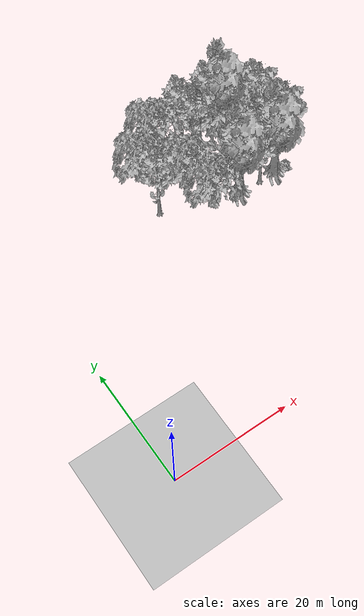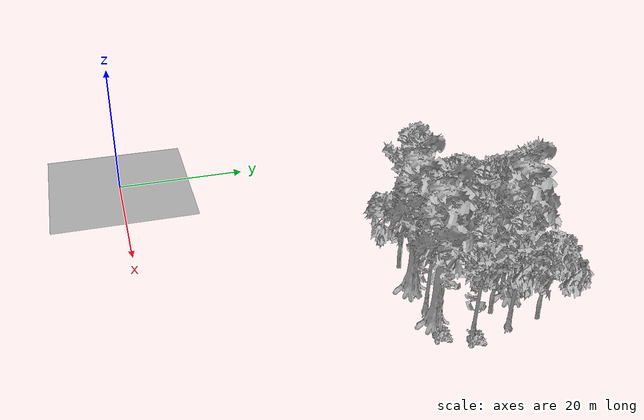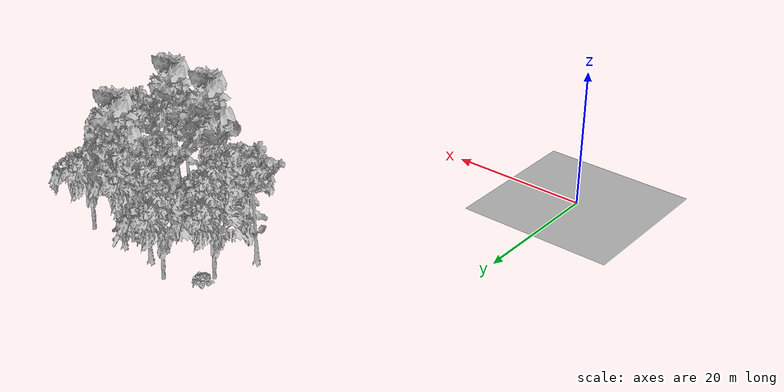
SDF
<sdf version="1.7">
 <world name="default">
  <model name="ground_plane">
   <static>1</static>
   <link name="link">
    <collision name="collision">
     <geometry><plane><normal>0 0 1</normal><size>100 100</size></plane></geometry>
     <surface><contact><ode><min_depth>0.01</min_depth><max_vel>0</max_vel></ode></contact></surface>
    </collision>
    <visual name="grass">
     <cast_shadows>0</cast_shadows>
     <geometry>
      <mesh>
       <scale>0.41000000000000003 0.41000000000000003 0.1</scale>
       <uri>file://grass_plane/meshes/grass_plane.dae</uri>
      </mesh>
     </geometry>
    </visual>
   </link>
  </model>
  <model name="Tree 33">
   <static>1</static>
   <pose>39.67086391093697 47.693228647121785 0 1.57079 -0 0</pose>
   <link name="link">
    <collision name="collision">
     <geometry><mesh><scale>5 5 5</scale><uri>model://tree_9/meshes/tree_9.obj</uri></mesh></geometry>
    </collision>
    <visual name="visual">
     <geometry><mesh><scale>5 5 5</scale><uri>model://tree_9/meshes/tree_9.obj</uri></mesh></geometry>
    </visual>
   </link>
  </model>
  <model name="Tree 50">
   <static>1</static>
   <pose>23.784958615671158 39.071334697973896 0 1.57079 -0 0</pose>
   <link name="link">
    <collision name="collision">
     <geometry><mesh><scale>5 5 5</scale><uri>model://tree_9/meshes/tree_9.obj</uri></mesh></geometry>
    </collision>
    <visual name="visual">
     <geometry><mesh><scale>5 5 5</scale><uri>model://tree_9/meshes/tree_9.obj</uri></mesh></geometry>
    </visual>
   </link>
  </model>
  <model name="Tree 56">
   <static>1</static>
   <pose>24.795117540372743 45.456987772595454 0 1.57079 -0 0</pose>
   <link name="link">
    <collision name="collision">
     <geometry><mesh><scale>5 5 5</scale><uri>model://tree_2/meshes/tree_2.obj</uri></mesh></geometry>
    </collision>
    <visual name="visual">
     <geometry><mesh><scale>5 5 5</scale><uri>model://tree_2/meshes/tree_2.obj</uri></mesh></geometry>
    </visual>
   </link>
  </model>
  <model name="Tree 89">
   <static>1</static>
   <pose>35.30041234183608 45.22693519672306 0 1.57079 -0 0</pose>
   <link name="link">
    <collision name="collision">
     <geometry><mesh><scale>5 5 5</scale><uri>model://tree_9/meshes/tree_9.obj</uri></mesh></geometry>
    </collision>
    <visual name="visual">
     <geometry><mesh><scale>5 5 5</scale><uri>model://tree_9/meshes/tree_9.obj</uri></mesh></geometry>
    </visual>
   </link>
  </model>
  <model name="Tree 98">
   <static>1</static>
   <pose>39.37759468433839 46.303701114589714 0 1.57079 -0 0</pose>
   <link name="link">
    <collision name="collision">
     <geometry><mesh><scale>5 5 5</scale><uri>model://tree_2/meshes/tree_2.obj</uri></mesh></geometry>
    </collision>
    <visual name="visual">
     <geometry><mesh><scale>5 5 5</scale><uri>model://tree_2/meshes/tree_2.obj</uri></mesh></geometry>
    </visual>
   </link>
  </model>
  <model name="Tree 149">
   <static>1</static>
   <pose>34.92805971777392 44.63427372227741 0 1.57079 -0 0</pose>
   <link name="link">
    <collision name="collision">
     <geometry><mesh><scale>5 5 5</scale><uri>model://tree_9/meshes/tree_9.obj</uri></mesh></geometry>
    </collision>
    <visual name="visual">
     <geometry><mesh><scale>5 5 5</scale><uri>model://tree_9/meshes/tree_9.obj</uri></mesh></geometry>
    </visual>
   </link>
  </model>
  <model name="Tree 156">
   <static>1</static>
   <pose>37.145250818423165 35.27654310468033 0 1.57079 -0 0</pose>
   <link name="link">
    <collision name="collision">
     <geometry><mesh><scale>5 5 5</scale><uri>model://tree_9/meshes/tree_9.obj</uri></mesh></geometry>
    </collision>
    <visual name="visual">
     <geometry><mesh><scale>5 5 5</scale><uri>model://tree_9/meshes/tree_9.obj</uri></mesh></geometry>
    </visual>
   </link>
  </model>
  <model name="Tree 160">
   <static>1</static>
   <pose>43.79051882658062 34.58082346817598 0 1.57079 -0 0</pose>
   <link name="link">
    <collision name="collision">
     <geometry><mesh><scale>5 5 5</scale><uri>model://tree_4/meshes/tree_4.obj</uri></mesh></geometry>
    </collision>
    <visual name="visual">
     <geometry><mesh><scale>5 5 5</scale><uri>model://tree_4/meshes/tree_4.obj</uri></mesh></geometry>
    </visual>
   </link>
  </model>
  <model name="Tree 166">
   <static>1</static>
   <pose>45.80068980575068 47.62167638669008 0 1.57079 -0 0</pose>
   <link name="link">
    <collision name="collision">
     <geometry><mesh><scale>5 5 5</scale><uri>model://tree_2/meshes/tree_2.obj</uri></mesh></geometry>
    </collision>
    <visual name="visual">
     <geometry><mesh><scale>5 5 5</scale><uri>model://tree_2/meshes/tree_2.obj</uri></mesh></geometry>
    </visual>
   </link>
  </model>
  <model name="Tree 193">
   <static>1</static>
   <pose>31.4406955588246 35.02788881723883 0 1.57079 -0 0</pose>
   <link name="link">
    <collision name="collision">
     <geometry><mesh><scale>5 5 5</scale><uri>model://tree_2/meshes/tree_2.obj</uri></mesh></geometry>
    </collision>
    <visual name="visual">
     <geometry><mesh><scale>5 5 5</scale><uri>model://tree_2/meshes/tree_2.obj</uri></mesh></geometry>
    </visual>
   </link>
  </model>
  <model name="Tree 246">
   <static>1</static>
   <pose>46.363726576839994 43.3824258515282 0 1.57079 -0 0</pose>
   <link name="link">
    <collision name="collision">
     <geometry><mesh><scale>5 5 5</scale><uri>model://tree_9/meshes/tree_9.obj</uri></mesh></geometry>
    </collision>
    <visual name="visual">
     <geometry><mesh><scale>5 5 5</scale><uri>model://tree_9/meshes/tree_9.obj</uri></mesh></geometry>
    </visual>
   </link>
  </model>
  <model name="Tree 251">
   <static>1</static>
   <pose>41.4586439803152 46.248667576131524 0 1.57079 -0 0</pose>
   <link name="link">
    <collision name="collision">
     <geometry><mesh><scale>5 5 5</scale><uri>model://tree_4/meshes/tree_4.obj</uri></mesh></geometry>
    </collision>
    <visual name="visual">
     <geometry><mesh><scale>5 5 5</scale><uri>model://tree_4/meshes/tree_4.obj</uri></mesh></geometry>
    </visual>
   </link>
  </model>
  <model name="Tree 281">
   <static>1</static>
   <pose>36.60943720805692 34.59463839181744 0 1.57079 -0 0</pose>
   <link name="link">
    <collision name="collision">
     <geometry><mesh><scale>5 5 5</scale><uri>model://tree_4/meshes/tree_4.obj</uri></mesh></geometry>
    </collision>
    <visual name="visual">
     <geometry><mesh><scale>5 5 5</scale><uri>model://tree_4/meshes/tree_4.obj</uri></mesh></geometry>
    </visual>
   </link>
  </model>
  <model name="Tree 287">
   <static>1</static>
   <pose>34.36551153234784 47.771866823140755 0 1.57079 -0 0</pose>
   <link name="link">
    <collision name="collision">
     <geometry><mesh><scale>5 5 5</scale><uri>model://tree_9/meshes/tree_9.obj</uri></mesh></geometry>
    </collision>
    <visual name="visual">
     <geometry><mesh><scale>5 5 5</scale><uri>model://tree_9/meshes/tree_9.obj</uri></mesh></geometry>
    </visual>
   </link>
  </model>
  <model name="Tree 306">
   <static>1</static>
   <pose>29.725671890383992 40.537798345735894 0 1.57079 -0 0</pose>
   <link name="link">
    <collision name="collision">
     <geometry><mesh><scale>5 5 5</scale><uri>model://tree_2/meshes/tree_2.obj</uri></mesh></geometry>
    </collision>
    <visual name="visual">
     <geometry><mesh><scale>5 5 5</scale><uri>model://tree_2/meshes/tree_2.obj</uri></mesh></geometry>
    </visual>
   </link>
  </model>
  <model name="Tree 376">
   <static>1</static>
   <pose>29.66214670094044 49.65046742588045 0 1.57079 -0 0</pose>
   <link name="link">
    <collision name="collision">
     <geometry><mesh><scale>5 5 5</scale><uri>model://tree_2/meshes/tree_2.obj</uri></mesh></geometry>
    </collision>
    <visual name="visual">
     <geometry><mesh><scale>5 5 5</scale><uri>model://tree_2/meshes/tree_2.obj</uri></mesh></geometry>
    </visual>
   </link>
  </model>
  <model name="Tree 387">
   <static>1</static>
   <pose>41.03221677490875 34.704959237562605 0 1.57079 -0 0</pose>
   <link name="link">
    <collision name="collision">
     <geometry><mesh><scale>5 5 5</scale><uri>model://tree_9/meshes/tree_9.obj</uri></mesh></geometry>
    </collision>
    <visual name="visual">
     <geometry><mesh><scale>5 5 5</scale><uri>model://tree_9/meshes/tree_9.obj</uri></mesh></geometry>
    </visual>
   </link>
  </model>
  <model name="Tree 406">
   <static>1</static>
   <pose>43.341286187382494 42.47876591322391 0 1.57079 -0 0</pose>
   <link name="link">
    <collision name="collision">
     <geometry><mesh><scale>5 5 5</scale><uri>model://tree_2/meshes/tree_2.obj</uri></mesh></geometry>
    </collision>
    <visual name="visual">
     <geometry><mesh><scale>5 5 5</scale><uri>model://tree_2/meshes/tree_2.obj</uri></mesh></geometry>
    </visual>
   </link>
  </model>
  <model name="Tree 492">
   <static>1</static>
   <pose>47.427719201250056 37.905993655684384 0 1.57079 -0 0</pose>
   <link name="link">
    <collision name="collision">
     <geometry><mesh><scale>5 5 5</scale><uri>model://tree_9/meshes/tree_9.obj</uri></mesh></geometry>
    </collision>
    <visual name="visual">
     <geometry><mesh><scale>5 5 5</scale><uri>model://tree_9/meshes/tree_9.obj</uri></mesh></geometry>
    </visual>
   </link>
  </model>
  <model name="Bush 5">
   <static>1</static>
   <pose>45.933181611941436 34.60231626734314 0 1.57079 -0 0</pose>
   <link name="link">
    <collision name="collision">
     <geometry><mesh><scale>2 2 2</scale><uri>model://bush_2/meshes/bush_2.obj</uri></mesh></geometry>
    </collision>
    <visual name="visual">
     <geometry><mesh><scale>5 5 5</scale><uri>model://bush_2/meshes/bush_2.obj</uri></mesh></geometry>
    </visual>
   </link>
  </model>
  <model name="Bush 58">
   <static>1</static>
   <pose>25.454564973677464 46.89550086184323 0 1.57079 -0 0</pose>
   <link name="link">
    <collision name="collision">
     <geometry><mesh><scale>2 2 2</scale><uri>model://bush_2/meshes/bush_2.obj</uri></mesh></geometry>
    </collision>
    <visual name="visual">
     <geometry><mesh><scale>5 5 5</scale><uri>model://bush_2/meshes/bush_2.obj</uri></mesh></geometry>
    </visual>
   </link>
  </model>
  <model name="Bush 83">
   <static>1</static>
   <pose>38.199823737116844 45.08963739645132 0 1.57079 -0 0</pose>
   <link name="link">
    <collision name="collision">
     <geometry><mesh><scale>2 2 2</scale><uri>model://bush_2/meshes/bush_2.obj</uri></mesh></geometry>
    </collision>
    <visual name="visual">
     <geometry><mesh><scale>5 5 5</scale><uri>model://bush_2/meshes/bush_2.obj</uri></mesh></geometry>
    </visual>
   </link>
  </model>
  <model name="Bush 99">
   <static>1</static>
   <pose>47.5592892358663 38.30142108924677 0 1.57079 -0 0</pose>
   <link name="link">
    <collision name="collision">
     <geometry><mesh><scale>2 2 2</scale><uri>model://bush_2/meshes/bush_2.obj</uri></mesh></geometry>
    </collision>
    <visual name="visual">
     <geometry><mesh><scale>5 5 5</scale><uri>model://bush_2/meshes/bush_2.obj</uri></mesh></geometry>
    </visual>
   </link>
  </model>
 </world>
</sdf>
